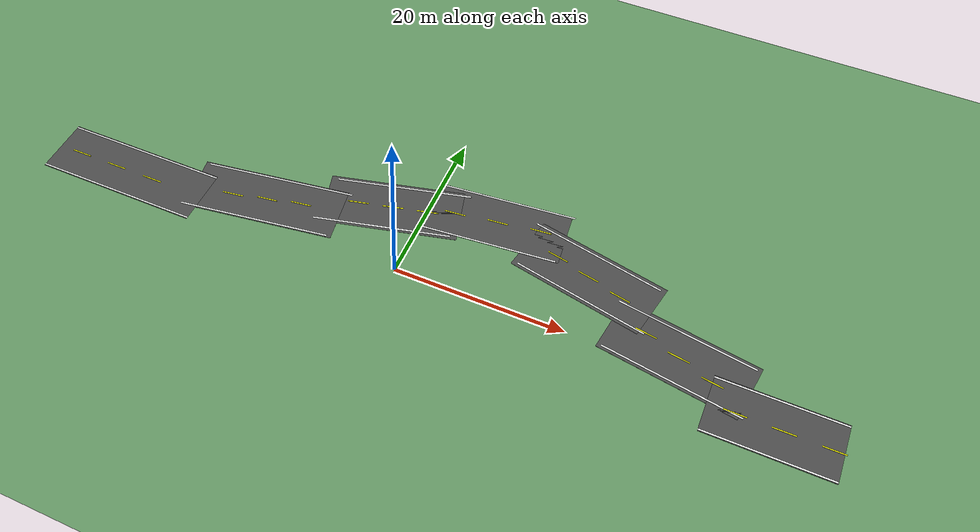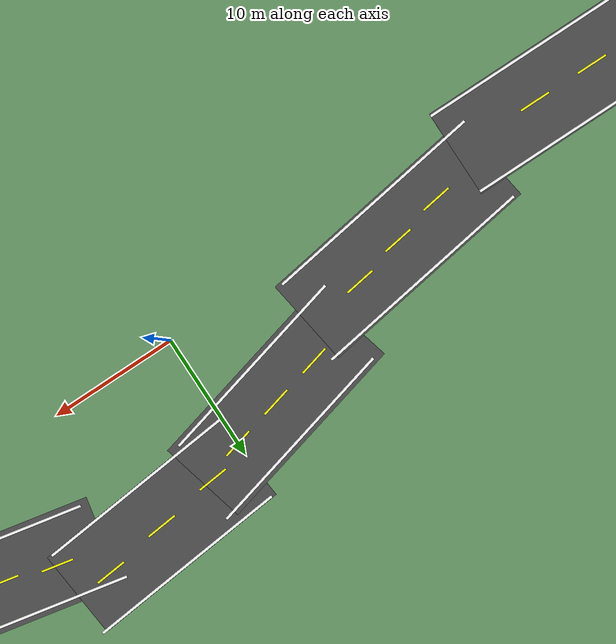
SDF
<?xml version="1.0" ?>
<sdf version="1.9">
  <world name="highway_track">

    <!-- Physics -->
    <physics name="1ms" type="ignored">
      <max_step_size>0.001</max_step_size>
      <real_time_factor>1.0</real_time_factor>
    </physics>

    <!-- Plugins -->
    <plugin
      filename="gz-sim-physics-system"
      name="gz::sim::systems::Physics">
    </plugin>
    <plugin
      filename="gz-sim-user-commands-system"
      name="gz::sim::systems::UserCommands">
    </plugin>
    <plugin
      filename="gz-sim-scene-broadcaster-system"
      name="gz::sim::systems::SceneBroadcaster">
    </plugin>
    <plugin
      filename="gz-sim-sensors-system"
      name="gz::sim::systems::Sensors">
      <render_engine>ogre2</render_engine>
    </plugin>

    <!-- Lighting -->
    <light type="directional" name="sun">
      <cast_shadows>true</cast_shadows>
      <pose>0 0 10 0 0 0</pose>
      <diffuse>0.8 0.8 0.8 1</diffuse>
      <specular>0.2 0.2 0.2 1</specular>
      <attenuation>
        <range>1000</range>
        <constant>0.9</constant>
        <linear>0.01</linear>
        <quadratic>0.001</quadratic>
      </attenuation>
      <direction>-0.5 0.1 -0.9</direction>
    </light>

    <!-- Ground Plane (grass) -->
    <model name="ground_plane">
      <static>true</static>
      <link name="link">
        <collision name="collision">
          <geometry>
            <plane>
              <normal>0 0 1</normal>
              <size>200 200</size>
            </plane>
          </geometry>
        </collision>
        <visual name="visual">
          <geometry>
            <plane>
              <normal>0 0 1</normal>
              <size>200 200</size>
            </plane>
          </geometry>
          <material>
            <ambient>0.3 0.5 0.3 1</ambient>
            <diffuse>0.4 0.6 0.4 1</diffuse>
            <specular>0.01 0.01 0.01 1</specular>
          </material>
        </visual>
      </link>
    </model>

    <!-- HIGHWAY-STYLE CURVED ROAD - Smooth gentle curves -->

    <!-- Segment 1: Entry straight -->
    <model name="road_1">
      <static>true</static>
      <pose>-35 0 0.01 0 0 0</pose>
      <link name="link">
        <visual name="visual">
          <geometry>
            <box>
              <size>20 7 0.01</size>
            </box>
          </geometry>
          <material>
            <ambient>0.2 0.2 0.2 1</ambient>
            <diffuse>0.3 0.3 0.3 1</diffuse>
            <specular>0.1 0.1 0.1 1</specular>
          </material>
        </visual>
      </link>
    </model>

    <!-- Segment 2: Gentle left curve start -->
    <model name="road_2">
      <static>true</static>
      <pose>-18 3 0.01 0 0 0.15</pose>
      <link name="link">
        <visual name="visual">
          <geometry>
            <box>
              <size>18 7 0.01</size>
            </box>
          </geometry>
          <material>
            <ambient>0.2 0.2 0.2 1</ambient>
            <diffuse>0.3 0.3 0.3 1</diffuse>
            <specular>0.1 0.1 0.1 1</specular>
          </material>
        </visual>
      </link>
    </model>

    <!-- Segment 3: Continuing left -->
    <model name="road_3">
      <static>true</static>
      <pose>-4 8 0.01 0 0 0.25</pose>
      <link name="link">
        <visual name="visual">
          <geometry>
            <box>
              <size>16 7 0.01</size>
            </box>
          </geometry>
          <material>
            <ambient>0.2 0.2 0.2 1</ambient>
            <diffuse>0.3 0.3 0.3 1</diffuse>
            <specular>0.1 0.1 0.1 1</specular>
          </material>
        </visual>
      </link>
    </model>

    <!-- Segment 4: Straightening out -->
    <model name="road_4">
      <static>true</static>
      <pose>8 11 0.01 0 0 0.1</pose>
      <link name="link">
        <visual name="visual">
          <geometry>
            <box>
              <size>16 7 0.01</size>
            </box>
          </geometry>
          <material>
            <ambient>0.2 0.2 0.2 1</ambient>
            <diffuse>0.3 0.3 0.3 1</diffuse>
            <specular>0.1 0.1 0.1 1</specular>
          </material>
        </visual>
      </link>
    </model>

    <!-- Segment 5: Gentle right curve -->
    <model name="road_5">
      <static>true</static>
      <pose>20 8 0.01 0 0 -0.2</pose>
      <link name="link">
        <visual name="visual">
          <geometry>
            <box>
              <size>16 7 0.01</size>
            </box>
          </geometry>
          <material>
            <ambient>0.2 0.2 0.2 1</ambient>
            <diffuse>0.3 0.3 0.3 1</diffuse>
            <specular>0.1 0.1 0.1 1</specular>
          </material>
        </visual>
      </link>
    </model>

    <!-- Segment 6: Continuing right -->
    <model name="road_6">
      <static>true</static>
      <pose>32 2 0.01 0 0 -0.15</pose>
      <link name="link">
        <visual name="visual">
          <geometry>
            <box>
              <size>16 7 0.01</size>
            </box>
          </geometry>
          <material>
            <ambient>0.2 0.2 0.2 1</ambient>
            <diffuse>0.3 0.3 0.3 1</diffuse>
            <specular>0.1 0.1 0.1 1</specular>
          </material>
        </visual>
      </link>
    </model>

    <!-- Segment 7: Exit straight -->
    <model name="road_7">
      <static>true</static>
      <pose>43 -2 0.01 0 0 0</pose>
      <link name="link">
        <visual name="visual">
          <geometry>
            <box>
              <size>14 7 0.01</size>
            </box>
          </geometry>
          <material>
            <ambient>0.2 0.2 0.2 1</ambient>
            <diffuse>0.3 0.3 0.3 1</diffuse>
            <specular>0.1 0.1 0.1 1</specular>
          </material>
        </visual>
      </link>
    </model>

    <!-- ================== LANE MARKINGS ================== -->

    <!-- Segment 1 lanes -->
    <model name="lane_1_left">
      <static>true</static>
      <pose>-35 3.3 0.02 0 0 0</pose>
      <link name="link">
        <visual name="visual">
          <geometry>
            <box>
              <size>20 0.2 0.01</size>
            </box>
          </geometry>
          <material>
            <ambient>1 1 1 1</ambient>
            <diffuse>1 1 1 1</diffuse>
          </material>
        </visual>
      </link>
    </model>

    <model name="lane_1_right">
      <static>true</static>
      <pose>-35 -3.3 0.02 0 0 0</pose>
      <link name="link">
        <visual name="visual">
          <geometry>
            <box>
              <size>20 0.2 0.01</size>
            </box>
          </geometry>
          <material>
            <ambient>1 1 1 1</ambient>
            <diffuse>1 1 1 1</diffuse>
          </material>
        </visual>
      </link>
    </model>

    <!-- Center dashed - Segment 1 -->
    <model name="lane_1_dash_1">
      <static>true</static>
      <pose>-42 0 0.02 0 0 0</pose>
      <link name="link">
        <visual name="visual">
          <geometry>
            <box>
              <size>2.5 0.15 0.01</size>
            </box>
          </geometry>
          <material>
            <ambient>1 1 0 1</ambient>
            <diffuse>1 1 0 1</diffuse>
          </material>
        </visual>
      </link>
    </model>

    <model name="lane_1_dash_2">
      <static>true</static>
      <pose>-37 0 0.02 0 0 0</pose>
      <link name="link">
        <visual name="visual">
          <geometry>
            <box>
              <size>2.5 0.15 0.01</size>
            </box>
          </geometry>
          <material>
            <ambient>1 1 0 1</ambient>
            <diffuse>1 1 0 1</diffuse>
          </material>
        </visual>
      </link>
    </model>

    <model name="lane_1_dash_3">
      <static>true</static>
      <pose>-32 0 0.02 0 0 0</pose>
      <link name="link">
        <visual name="visual">
          <geometry>
            <box>
              <size>2.5 0.15 0.01</size>
            </box>
          </geometry>
          <material>
            <ambient>1 1 0 1</ambient>
            <diffuse>1 1 0 1</diffuse>
          </material>
        </visual>
      </link>
    </model>

    <!-- Segment 2 lanes -->
    <model name="lane_2_left">
      <static>true</static>
      <pose>-18 6.3 0.02 0 0 0.15</pose>
      <link name="link">
        <visual name="visual">
          <geometry>
            <box>
              <size>18 0.2 0.01</size>
            </box>
          </geometry>
          <material>
            <ambient>1 1 1 1</ambient>
            <diffuse>1 1 1 1</diffuse>
          </material>
        </visual>
      </link>
    </model>

    <model name="lane_2_right">
      <static>true</static>
      <pose>-18 -0.3 0.02 0 0 0.15</pose>
      <link name="link">
        <visual name="visual">
          <geometry>
            <box>
              <size>18 0.2 0.01</size>
            </box>
          </geometry>
          <material>
            <ambient>1 1 1 1</ambient>
            <diffuse>1 1 1 1</diffuse>
          </material>
        </visual>
      </link>
    </model>

    <model name="lane_2_dash_1">
      <static>true</static>
      <pose>-22 2 0.02 0 0 0.15</pose>
      <link name="link">
        <visual name="visual">
          <geometry>
            <box>
              <size>2.5 0.15 0.01</size>
            </box>
          </geometry>
          <material>
            <ambient>1 1 0 1</ambient>
            <diffuse>1 1 0 1</diffuse>
          </material>
        </visual>
      </link>
    </model>

    <model name="lane_2_dash_2">
      <static>true</static>
      <pose>-18 3 0.02 0 0 0.15</pose>
      <link name="link">
        <visual name="visual">
          <geometry>
            <box>
              <size>2.5 0.15 0.01</size>
            </box>
          </geometry>
          <material>
            <ambient>1 1 0 1</ambient>
            <diffuse>1 1 0 1</diffuse>
          </material>
        </visual>
      </link>
    </model>

    <model name="lane_2_dash_3">
      <static>true</static>
      <pose>-14 4 0.02 0 0 0.15</pose>
      <link name="link">
        <visual name="visual">
          <geometry>
            <box>
              <size>2.5 0.15 0.01</size>
            </box>
          </geometry>
          <material>
            <ambient>1 1 0 1</ambient>
            <diffuse>1 1 0 1</diffuse>
          </material>
        </visual>
      </link>
    </model>

    <!-- Segment 3 lanes -->
    <model name="lane_3_left">
      <static>true</static>
      <pose>-4 11.2 0.02 0 0 0.25</pose>
      <link name="link">
        <visual name="visual">
          <geometry>
            <box>
              <size>16 0.2 0.01</size>
            </box>
          </geometry>
          <material>
            <ambient>1 1 1 1</ambient>
            <diffuse>1 1 1 1</diffuse>
          </material>
        </visual>
      </link>
    </model>

    <model name="lane_3_right">
      <static>true</static>
      <pose>-4 4.8 0.02 0 0 0.25</pose>
      <link name="link">
        <visual name="visual">
          <geometry>
            <box>
              <size>16 0.2 0.01</size>
            </box>
          </geometry>
          <material>
            <ambient>1 1 1 1</ambient>
            <diffuse>1 1 1 1</diffuse>
          </material>
        </visual>
      </link>
    </model>

    <model name="lane_3_dash_1">
      <static>true</static>
      <pose>-8 7 0.02 0 0 0.25</pose>
      <link name="link">
        <visual name="visual">
          <geometry>
            <box>
              <size>2.5 0.15 0.01</size>
            </box>
          </geometry>
          <material>
            <ambient>1 1 0 1</ambient>
            <diffuse>1 1 0 1</diffuse>
          </material>
        </visual>
      </link>
    </model>

    <model name="lane_3_dash_2">
      <static>true</static>
      <pose>-4 8 0.02 0 0 0.25</pose>
      <link name="link">
        <visual name="visual">
          <geometry>
            <box>
              <size>2.5 0.15 0.01</size>
            </box>
          </geometry>
          <material>
            <ambient>1 1 0 1</ambient>
            <diffuse>1 1 0 1</diffuse>
          </material>
        </visual>
      </link>
    </model>

    <model name="lane_3_dash_3">
      <static>true</static>
      <pose>0 9 0.02 0 0 0.25</pose>
      <link name="link">
        <visual name="visual">
          <geometry>
            <box>
              <size>2.5 0.15 0.01</size>
            </box>
          </geometry>
          <material>
            <ambient>1 1 0 1</ambient>
            <diffuse>1 1 0 1</diffuse>
          </material>
        </visual>
      </link>
    </model>

    <!-- Segment 4 lanes -->
    <model name="lane_4_left">
      <static>true</static>
      <pose>8 14.4 0.02 0 0 0.1</pose>
      <link name="link">
        <visual name="visual">
          <geometry>
            <box>
              <size>16 0.2 0.01</size>
            </box>
          </geometry>
          <material>
            <ambient>1 1 1 1</ambient>
            <diffuse>1 1 1 1</diffuse>
          </material>
        </visual>
      </link>
    </model>

    <model name="lane_4_right">
      <static>true</static>
      <pose>8 7.6 0.02 0 0 0.1</pose>
      <link name="link">
        <visual name="visual">
          <geometry>
            <box>
              <size>16 0.2 0.01</size>
            </box>
          </geometry>
          <material>
            <ambient>1 1 1 1</ambient>
            <diffuse>1 1 1 1</diffuse>
          </material>
        </visual>
      </link>
    </model>

    <model name="lane_4_dash_1">
      <static>true</static>
      <pose>3 10.2 0.02 0 0 0.1</pose>
      <link name="link">
        <visual name="visual">
          <geometry>
            <box>
              <size>2.5 0.15 0.01</size>
            </box>
          </geometry>
          <material>
            <ambient>1 1 0 1</ambient>
            <diffuse>1 1 0 1</diffuse>
          </material>
        </visual>
      </link>
    </model>

    <model name="lane_4_dash_2">
      <static>true</static>
      <pose>8 11 0.02 0 0 0.1</pose>
      <link name="link">
        <visual name="visual">
          <geometry>
            <box>
              <size>2.5 0.15 0.01</size>
            </box>
          </geometry>
          <material>
            <ambient>1 1 0 1</ambient>
            <diffuse>1 1 0 1</diffuse>
          </material>
        </visual>
      </link>
    </model>

    <model name="lane_4_dash_3">
      <static>true</static>
      <pose>13 11.8 0.02 0 0 0.1</pose>
      <link name="link">
        <visual name="visual">
          <geometry>
            <box>
              <size>2.5 0.15 0.01</size>
            </box>
          </geometry>
          <material>
            <ambient>1 1 0 1</ambient>
            <diffuse>1 1 0 1</diffuse>
          </material>
        </visual>
      </link>
    </model>

    <!-- Segment 5 lanes -->
    <model name="lane_5_left">
      <static>true</static>
      <pose>20 11.1 0.02 0 0 -0.2</pose>
      <link name="link">
        <visual name="visual">
          <geometry>
            <box>
              <size>16 0.2 0.01</size>
            </box>
          </geometry>
          <material>
            <ambient>1 1 1 1</ambient>
            <diffuse>1 1 1 1</diffuse>
          </material>
        </visual>
      </link>
    </model>

    <model name="lane_5_right">
      <static>true</static>
      <pose>20 4.9 0.02 0 0 -0.2</pose>
      <link name="link">
        <visual name="visual">
          <geometry>
            <box>
              <size>16 0.2 0.01</size>
            </box>
          </geometry>
          <material>
            <ambient>1 1 1 1</ambient>
            <diffuse>1 1 1 1</diffuse>
          </material>
        </visual>
      </link>
    </model>

    <model name="lane_5_dash_1">
      <static>true</static>
      <pose>16 9.2 0.02 0 0 -0.2</pose>
      <link name="link">
        <visual name="visual">
          <geometry>
            <box>
              <size>2.5 0.15 0.01</size>
            </box>
          </geometry>
          <material>
            <ambient>1 1 0 1</ambient>
            <diffuse>1 1 0 1</diffuse>
          </material>
        </visual>
      </link>
    </model>

    <model name="lane_5_dash_2">
      <static>true</static>
      <pose>20 8 0.02 0 0 -0.2</pose>
      <link name="link">
        <visual name="visual">
          <geometry>
            <box>
              <size>2.5 0.15 0.01</size>
            </box>
          </geometry>
          <material>
            <ambient>1 1 0 1</ambient>
            <diffuse>1 1 0 1</diffuse>
          </material>
        </visual>
      </link>
    </model>

    <model name="lane_5_dash_3">
      <static>true</static>
      <pose>24 6.8 0.02 0 0 -0.2</pose>
      <link name="link">
        <visual name="visual">
          <geometry>
            <box>
              <size>2.5 0.15 0.01</size>
            </box>
          </geometry>
          <material>
            <ambient>1 1 0 1</ambient>
            <diffuse>1 1 0 1</diffuse>
          </material>
        </visual>
      </link>
    </model>

    <!-- Segment 6 lanes -->
    <model name="lane_6_left">
      <static>true</static>
      <pose>32 5.1 0.02 0 0 -0.15</pose>
      <link name="link">
        <visual name="visual">
          <geometry>
            <box>
              <size>16 0.2 0.01</size>
            </box>
          </geometry>
          <material>
            <ambient>1 1 1 1</ambient>
            <diffuse>1 1 1 1</diffuse>
          </material>
        </visual>
      </link>
    </model>

    <model name="lane_6_right">
      <static>true</static>
      <pose>32 -1.1 0.02 0 0 -0.15</pose>
      <link name="link">
        <visual name="visual">
          <geometry>
            <box>
              <size>16 0.2 0.01</size>
            </box>
          </geometry>
          <material>
            <ambient>1 1 1 1</ambient>
            <diffuse>1 1 1 1</diffuse>
          </material>
        </visual>
      </link>
    </model>

    <model name="lane_6_dash_1">
      <static>true</static>
      <pose>28 3.5 0.02 0 0 -0.15</pose>
      <link name="link">
        <visual name="visual">
          <geometry>
            <box>
              <size>2.5 0.15 0.01</size>
            </box>
          </geometry>
          <material>
            <ambient>1 1 0 1</ambient>
            <diffuse>1 1 0 1</diffuse>
          </material>
        </visual>
      </link>
    </model>

    <model name="lane_6_dash_2">
      <static>true</static>
      <pose>32 2 0.02 0 0 -0.15</pose>
      <link name="link">
        <visual name="visual">
          <geometry>
            <box>
              <size>2.5 0.15 0.01</size>
            </box>
          </geometry>
          <material>
            <ambient>1 1 0 1</ambient>
            <diffuse>1 1 0 1</diffuse>
          </material>
        </visual>
      </link>
    </model>

    <model name="lane_6_dash_3">
      <static>true</static>
      <pose>36 0.5 0.02 0 0 -0.15</pose>
      <link name="link">
        <visual name="visual">
          <geometry>
            <box>
              <size>2.5 0.15 0.01</size>
            </box>
          </geometry>
          <material>
            <ambient>1 1 0 1</ambient>
            <diffuse>1 1 0 1</diffuse>
          </material>
        </visual>
      </link>
    </model>

    <!-- Segment 7 lanes -->
    <model name="lane_7_left">
      <static>true</static>
      <pose>43 1.3 0.02 0 0 0</pose>
      <link name="link">
        <visual name="visual">
          <geometry>
            <box>
              <size>14 0.2 0.01</size>
            </box>
          </geometry>
          <material>
            <ambient>1 1 1 1</ambient>
            <diffuse>1 1 1 1</diffuse>
          </material>
        </visual>
      </link>
    </model>

    <model name="lane_7_right">
      <static>true</static>
      <pose>43 -5.3 0.02 0 0 0</pose>
      <link name="link">
        <visual name="visual">
          <geometry>
            <box>
              <size>14 0.2 0.01</size>
            </box>
          </geometry>
          <material>
            <ambient>1 1 1 1</ambient>
            <diffuse>1 1 1 1</diffuse>
          </material>
        </visual>
      </link>
    </model>

    <model name="lane_7_dash_1">
      <static>true</static>
      <pose>39 -2 0.02 0 0 0</pose>
      <link name="link">
        <visual name="visual">
          <geometry>
            <box>
              <size>2.5 0.15 0.01</size>
            </box>
          </geometry>
          <material>
            <ambient>1 1 0 1</ambient>
            <diffuse>1 1 0 1</diffuse>
          </material>
        </visual>
      </link>
    </model>

    <model name="lane_7_dash_2">
      <static>true</static>
      <pose>44 -2 0.02 0 0 0</pose>
      <link name="link">
        <visual name="visual">
          <geometry>
            <box>
              <size>2.5 0.15 0.01</size>
            </box>
          </geometry>
          <material>
            <ambient>1 1 0 1</ambient>
            <diffuse>1 1 0 1</diffuse>
          </material>
        </visual>
      </link>
    </model>

    <model name="lane_7_dash_3">
      <static>true</static>
      <pose>49 -2 0.02 0 0 0</pose>
      <link name="link">
        <visual name="visual">
          <geometry>
            <box>
              <size>2.5 0.15 0.01</size>
            </box>
          </geometry>
          <material>
            <ambient>1 1 0 1</ambient>
            <diffuse>1 1 0 1</diffuse>
          </material>
        </visual>
      </link>
    </model>

  </world>
</sdf>
